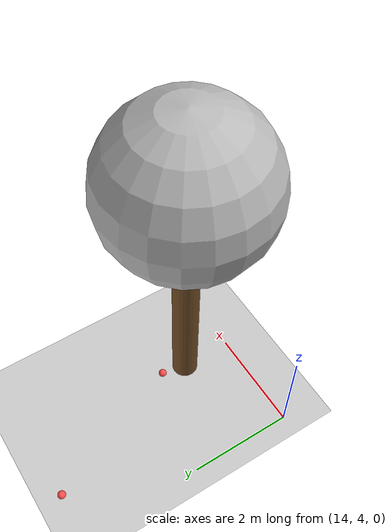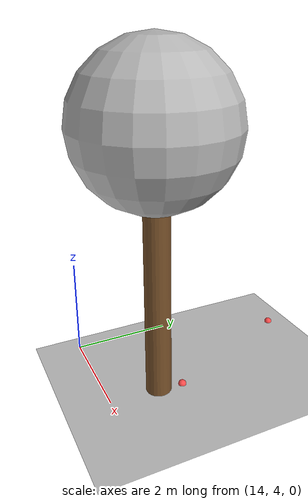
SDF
<sdf version="1.7">
 <world name="default">
  <model name="ground_plane">
   <static>1</static>
   <link name="link">
    <collision name="collision">
     <geometry><plane><normal>0 0 1</normal><size>100 100</size></plane></geometry>
     <surface>
      <contact><collide_bitmask>65535</collide_bitmask></contact>
      <friction><ode><mu>100</mu><mu2>50</mu2></ode></friction>
     </surface>
    </collision>
    <visual name="visual">
     <cast_shadows>0</cast_shadows>
     <geometry><plane><normal>0 0 1</normal><size>100 100</size></plane></geometry>
     <material>
      <script><uri>file://media/materials/scripts/gazebo.material</uri><name>Gazebo/Grey</name></script>
     </material>
    </visual>
   </link>
  </model>
  <model name="tree_simple_83">
   <static>1</static>
   <link name="link">
    <pose>0 0 0.1 0 -0 0</pose>
    <inertial>
     <mass>666</mass>
     <inertia>
      <ixx>0.0861167</ixx>
      <ixy>0</ixy>
      <ixz>0</ixz>
      <iyy>0.0861167</iyy>
      <iyz>0</iyz>
      <izz>0.0861167</izz>
     </inertia>
    </inertial>
    <collision name="collision_trunk">
     <pose>0 0 2 0 -0 0</pose>
     <geometry><cylinder><radius>0.25</radius><length>4</length></cylinder></geometry>
     <surface>
      <contact>
       <poissons_ratio>0.347</poissons_ratio>
       <elastic_modulus>8.8e+09</elastic_modulus>
       <ode><kp>100000</kp><kd>100</kd><max_vel>100</max_vel><min_depth>0.001</min_depth></ode>
      </contact>
      <friction>
       <torsional>
        <coefficient>1</coefficient>
        <use_patch_radius>0</use_patch_radius>
        <surface_radius>0.01</surface_radius>
       </torsional>
      </friction>
     </surface>
    </collision>
    <collision name="collision_treetop">
     <pose>0 0 5.2 0 -0 0</pose>
     <geometry><sphere><radius>1.5</radius></sphere></geometry>
     <surface>
      <contact>
       <poissons_ratio>0.347</poissons_ratio>
       <elastic_modulus>8.8e+09</elastic_modulus>
       <ode><kp>100000</kp><kd>100</kd><max_vel>100</max_vel><min_depth>0.001</min_depth></ode>
      </contact>
      <friction>
       <torsional>
        <coefficient>1</coefficient>
        <use_patch_radius>0</use_patch_radius>
        <surface_radius>0.01</surface_radius>
       </torsional>
      </friction>
     </surface>
    </collision>
    <visual name="trunk">
     <pose>0 0 2 0 -0 0</pose>
     <geometry><cylinder><radius>0.25</radius><length>4</length></cylinder></geometry>
     <material>
      <script>
       <uri>model://tree_simple/scripts</uri>
       <uri>model://tree_simple/materials/textures</uri>
       <name>TreeSimple/Trunk</name>
      </script>
     </material>
    </visual>
    <visual name="treetop">
     <pose>0 0 5.2 0 -0 0</pose>
     <geometry><sphere><radius>1.5</radius></sphere></geometry>
     <material>
      <script>
       <uri>model://tree_simple/scripts</uri>
       <uri>model://tree_simple/materials/textures</uri>
       <name>TreeSimple/Treetop</name>
      </script>
     </material>
    </visual>
   </link>
   <pose>16 5 -0.1 0 -0 0</pose>
  </model>
  <model name="seed_red_297">
   <link name="link">
    <inertial>
     <mass>1</mass>
     <inertia><ixx>0.1</ixx><ixy>0</ixy><ixz>0</ixz><iyy>0.1</iyy><iyz>0</iyz><izz>0.1</izz></inertia>
    </inertial>
    <visual name="visual">
     <geometry><sphere><radius>0.08</radius></sphere></geometry>
     <material>
      <script><name>Gazebo/Grey</name><uri>file://media/materials/scripts/gazebo.material</uri></script>
      <shader type="pixel"><normal_map>__default__</normal_map></shader>
      <ambient>1 0.3 0.3 1</ambient>
      <diffuse>0.7 0.7 0.7 1</diffuse>
      <specular>0.01 0.01 0.01 1</specular>
      <emissive>0 0 0 1</emissive>
     </material>
    </visual>
    <collision name="collision">
     <geometry><sphere><radius>0.0005</radius></sphere></geometry>
     <surface>
      <friction>
       <ode><mu>1</mu><mu2>1</mu2><fdir1>0 0 0</fdir1><slip1>0</slip1><slip2>0</slip2></ode>
       <torsional>
        <coefficient>1</coefficient>
        <patch_radius>0</patch_radius>
        <surface_radius>0</surface_radius>
        <use_patch_radius>1</use_patch_radius>
        <ode><slip>0</slip></ode>
       </torsional>
      </friction>
      <bounce><restitution_coefficient>0</restitution_coefficient><threshold>1e+06</threshold></bounce>
      <contact>
       <collide_without_contact>0</collide_without_contact>
       <collide_without_contact_bitmask>1</collide_without_contact_bitmask>
       <collide_bitmask>1</collide_bitmask>
       <ode>
        <soft_cfm>0</soft_cfm>
        <soft_erp>0.2</soft_erp>
        <kp>1e+13</kp>
        <kd>1</kd>
        <max_vel>0.01</max_vel>
        <min_depth>0</min_depth>
       </ode>
       <bullet>
        <split_impulse>1</split_impulse>
        <split_impulse_penetration_threshold>-0.01</split_impulse_penetration_threshold>
        <soft_cfm>0</soft_cfm>
        <soft_erp>0.2</soft_erp>
        <kp>1e+13</kp>
        <kd>1</kd>
       </bullet>
      </contact>
     </surface>
    </collision>
   </link>
   <static>0</static>
   <pose>14.9032 8.34564 0.0005 0 -0 0</pose>
  </model>
  <model name="seed_red_328">
   <link name="link">
    <inertial>
     <mass>1</mass>
     <inertia><ixx>0.1</ixx><ixy>0</ixy><ixz>0</ixz><iyy>0.1</iyy><iyz>0</iyz><izz>0.1</izz></inertia>
    </inertial>
    <visual name="visual">
     <geometry><sphere><radius>0.08</radius></sphere></geometry>
     <material>
      <script><name>Gazebo/Grey</name><uri>file://media/materials/scripts/gazebo.material</uri></script>
      <shader type="pixel"><normal_map>__default__</normal_map></shader>
      <ambient>1 0.3 0.3 1</ambient>
      <diffuse>0.7 0.7 0.7 1</diffuse>
      <specular>0.01 0.01 0.01 1</specular>
      <emissive>0 0 0 1</emissive>
     </material>
    </visual>
    <collision name="collision">
     <geometry><sphere><radius>0.0005</radius></sphere></geometry>
     <surface>
      <friction>
       <ode><mu>1</mu><mu2>1</mu2><fdir1>0 0 0</fdir1><slip1>0</slip1><slip2>0</slip2></ode>
       <torsional>
        <coefficient>1</coefficient>
        <patch_radius>0</patch_radius>
        <surface_radius>0</surface_radius>
        <use_patch_radius>1</use_patch_radius>
        <ode><slip>0</slip></ode>
       </torsional>
      </friction>
      <bounce><restitution_coefficient>0</restitution_coefficient><threshold>1e+06</threshold></bounce>
      <contact>
       <collide_without_contact>0</collide_without_contact>
       <collide_without_contact_bitmask>1</collide_without_contact_bitmask>
       <collide_bitmask>1</collide_bitmask>
       <ode>
        <soft_cfm>0</soft_cfm>
        <soft_erp>0.2</soft_erp>
        <kp>1e+13</kp>
        <kd>1</kd>
        <max_vel>0.01</max_vel>
        <min_depth>0</min_depth>
       </ode>
       <bullet>
        <split_impulse>1</split_impulse>
        <split_impulse_penetration_threshold>-0.01</split_impulse_penetration_threshold>
        <soft_cfm>0</soft_cfm>
        <soft_erp>0.2</soft_erp>
        <kp>1e+13</kp>
        <kd>1</kd>
       </bullet>
      </contact>
     </surface>
    </collision>
   </link>
   <static>0</static>
   <pose>16.0798 5.47715 0.0005 0 -0 0</pose>
  </model>
 </world>
</sdf>
